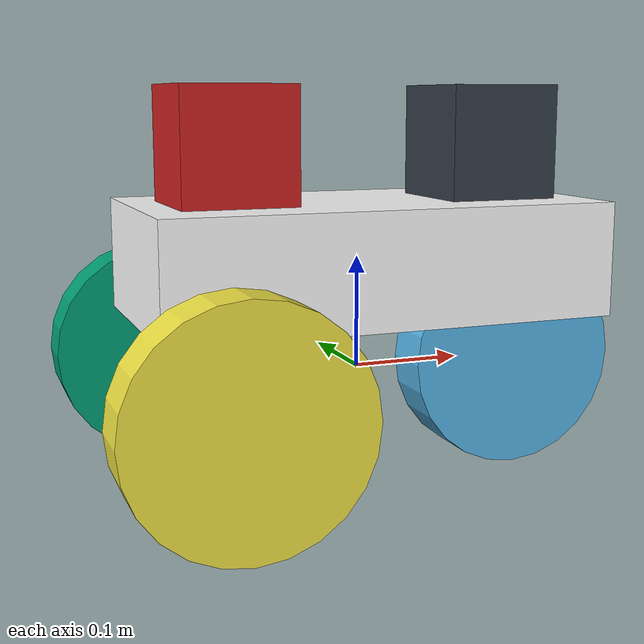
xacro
<?xml version="1.0"?>
<robot name="castor"
	xmlns:xacro="http://www.ros.org/wiki/xacro">

	<!-- Included files -->
	<xacro:include filename="$(find node_counting_alg)/urdf/components.gazebo"/>
	<xacro:include filename="$(find node_counting_alg)/urdf/materials.xacro" />

	<!-- Create robot's base_link -->
	<xacro:base_link name="base_link" size_x = "0.4" size_y = "0.2" size_z = "0.1" mass="5"/>

	<!-- Create wheels -->

	<xacro:wheel_link name="link_front_wheel" mass="0.2"/>
	<xacro:omniwheel_joint name="joint_front_wheel" child="link_front_wheel" origin_xyz="0.15 0 0"/>

	<xacro:wheel_link name="link_lrear_wheel" mass="0.2"/>
	<xacro:wheel_joint name="joint_lrear_wheel" child="link_lrear_wheel" origin_xyz="-0.15 0.15 0"/>

	<xacro:wheel_link name="link_rrear_wheel" mass="0.2"/>
	<xacro:wheel_joint name="joint_rrear_wheel" child="link_rrear_wheel" origin_xyz="-0.15 -0.15 0"/>

	<!-- Create camera -->
	<xacro:sensor_link name="camera_link" color = "red"/>
	<xacro:sensor_joint name="camera_joint" child="camera_link" origin_xyz="-0.12 0 0.2" />

	<!-- Create laser -->
	<xacro:sensor_link name="laser_link" color = "blue"/>
	<xacro:sensor_joint name="laser_joint" child="laser_link" origin_xyz="0.12 0 0.2" />

	<gazebo>
		<plugin filename="libgazebo_ros_diff_drive.so" name="differential_drive_controller">
			<alwaysOn>true</alwaysOn>
			<updateRate>100</updateRate>
			<leftJoint>joint_lrear_wheel</leftJoint>
			<rightJoint>joint_rrear_wheel</rightJoint>
			<wheelSeparation>0.4</wheelSeparation>
			<wheelDiameter>0.2</wheelDiameter>
			<torque>0.1</torque>
			<commandTopic>cmd_vel</commandTopic>
			<odometryTopic>odom</odometryTopic>
			<odometryFrame>odom</odometryFrame>
			<robotBaseFrame>base_link</robotBaseFrame>
			<rosDebugLevel>na</rosDebugLevel>
			<publishWheelTF>true</publishWheelTF>
			<publishWheelJointState>true</publishWheelJointState>
			<legacyMode>false</legacyMode>
			<wheelAcceleration>0.1</wheelAcceleration>
			<wheelTorque>5</wheelTorque>
			<odometrySource>world</odometrySource>
			<publishTf>1</publishTf>
		</plugin>
	</gazebo>

	<!-- Camera plugin -->
	<xacro:camera_plugin name="front_camera" ref_link = "camera_link"/>

	<!-- Laser plugin -->
	<xacro:laser_plugin name="front_laser" ref_link = "laser_link"/>

</robot>

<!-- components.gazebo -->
<robot xmlns:xacro="http://www.ros.org/wiki/xacro">

  <!--Materials-->
  <gazebo reference="base_link">
    <material>Gazebo/Orange</material>
  </gazebo>
  <gazebo reference="link_wheel_1">
    <material>Gazebo/Black</material>
  </gazebo>
  <gazebo reference="link_wheel_2">
    <material>Gazebo/Black</material>
  </gazebo>
  <gazebo reference="link_wheel_3">
    <material>Gazebo/Black</material>
  </gazebo>
  <gazebo reference="link_wheel_4">
    <material>Gazebo/Black</material>
  </gazebo>
  <gazebo reference="camera_link">
    <material>Gazebo/Red</material>
  </gazebo>
  <gazebo reference="laser_link">
    <material>Gazebo/Blue</material>
  </gazebo>

  <xacro:macro name="default_inertial" params="mass">
    <inertial>
      <mass value="${mass}" />
      <inertia ixx="1.0" ixy="0.0" ixz="0.0" iyy="1.0" iyz="0.0" izz="1.0" />
    </inertial>
  </xacro:macro>

  <!--Cylinder-->

  <xacro:macro name="cylinder_geometry" params="r h">
    <geometry>
      <cylinder length="${h}" radius="${r}"/>
    </geometry>
  </xacro:macro>

  <!--Base-->

  <xacro:macro name="base_link" params="name size_x size_y size_z mass">
    <link name="${name}">
      <xacro:default_inertial mass="${mass}"/>
      <visual>
        <geometry>
          <box size="${size_x} ${size_y} ${size_z}"/>
        </geometry>
        <origin rpy="0 0 0" xyz="0 0 ${size_z}"/>
        <material name="white">
          <color rgba="1 1 1 1"/>
        </material>
      </visual>
      <collision>
        <geometry>
          <box size="${size_x} ${size_y} ${size_z}"/>
        </geometry>
        <origin rpy="0 0 0" xyz="0 0 ${size_z}"/>
      </collision>
    </link>
  </xacro:macro>

  <xacro:macro name="castor_base_link" params="name size_x size_y size_z mass">
    <link name="${name}">
      <!-- All Base - Pose and Inertial -->
      <pose>0 0 0.1 0 0 0</pose>
      <inertial>
        <mass value="${mass}"/>
        <origin rpy="0 0 0" xyz="0 0 0.1"/>
        <inertia ixx="0.0395416666667" ixy="0" ixz="0" iyy="0.106208333333" iyz="0" izz="0.106208333333"/>
      </inertial>
      <!-- Chassis - Visual and cllision -->
      <visual>
        <geometry>
          <box size="${size_x} ${size_y} ${size_z}"/>
        </geometry>
        <origin rpy="0 0 0" xyz="0 0 ${size_z}"/>
        <material name="white">
          <color rgba="1 1 1 1"/>
        </material>
      </visual>
      <collision name="collision_chassis">
        <geometry>
          <box size="${size_x} ${size_y} ${size_z}"/>
        </geometry>
        <origin rpy="0 0 0" xyz="0 0 ${size_z}"/>
      </collision>
      <!-- Front Castor Wheel - Visual and cllision -->
      <visual name="castor_front_visual">
        <origin rpy=" 0 0 0" xyz="0.1 0 -0.02"/>
        <geometry>
          <sphere radius="0.08"/>
        </geometry>
        <material name="white">
          <color rgba="1 1 1 1"/>
        </material>
      </visual>
      <collision name="castor_front_collision">
        <origin rpy=" 0 0 0" xyz="0.1 0 -0.02"/>
        <geometry>
          <sphere radius="0.08"/>
        </geometry>
        <surface>
          <friction>
            <ode>
              <mu>0</mu>
              <mu2>0</mu2>
              <slip1>1.0</slip1>
              <slip2>1.0</slip2>
            </ode>
          </friction>
        </surface>
      </collision>
    </link>
  </xacro:macro>

  <!--Wheel-->

  <xacro:property name="PI" value="3.1415926535897931"/>
  <xacro:property name="halfPI" value="1.570796327"/>
  <xacro:property name="width_wheel" value="0.05" />
  <xacro:property name="radius_wheel" value="0.1" />

  <xacro:macro name="wheel_link" params="name mass">
    <link name="${name}">
      <xacro:default_inertial mass="${mass}"/>
      <collision name="link_right_wheel_collision">
        <origin rpy="0 1.5708 1.5708" xyz="0 0 0"/>
        <xacro:cylinder_geometry r = "${radius_wheel}" h = "${width_wheel}" />
      </collision>
      <visual name="${name}_visual">
        <origin rpy="0 1.5708 1.5708" xyz="0 0 0"/>
        <xacro:cylinder_geometry r = "${radius_wheel}" h = "${width_wheel}" />
      </visual>
    </link>
  </xacro:macro>

  <xacro:macro name="wheel_joint" params="name child origin_xyz">
    <joint name="${name}" type="continuous">
      <origin rpy="0 0 0" xyz="${origin_xyz}"/>
      <child link="${child}"/>
      <parent link="base_link"/>
      <axis rpy="0 0 0" xyz="0 1 0"/>
      <limit effort="10000" velocity="1000"/>
      <joint_properties damping="1.0" friction="1.0"/>
    </joint>
  </xacro:macro>

  <xacro:macro name="omniwheel_joint" params="name child origin_xyz">
    <joint name="${name}" type="continuous">
      <origin rpy="0 0 0" xyz="${origin_xyz}"/>
      <child link="${child}"/>
      <parent link="base_link"/>
      <axis xyz="0 1 0" rpy="0 0 0" />
      <limit effort="1000" velocity="1000"/>
      <joint_properties damping="0.0" friction="0.0"/>
    </joint>
  </xacro:macro>

  <!--Sensor Link -->

  <xacro:macro name="sensor_link" params="name color">
    <link name="${name}">
      <visual>
        <geometry>
          <box size="0.1 0.1 0.1"/>
        </geometry>
        <origin rpy="0 0 0" xyz="0 0 0"/>
        <material name="${color}">
        </material>
      </visual>
      <collision>
        <geometry>
          <box size="0.1 0.1 0.1 "/>
        </geometry>
        <origin rpy="0 0 0" xyz="0 0 0"/>
      </collision>
      <xacro:default_inertial mass="0.01"/>
    </link>
  </xacro:macro>

  <xacro:macro name="sensor_joint" params="name child origin_xyz">
    <joint name="${name}" type="fixed">
      <origin rpy="0 0 0" xyz="${origin_xyz}"/>
      <child link="${child}"/>
      <parent link="base_link"/>
    </joint>
  </xacro:macro>

  <!-- Camera plugin -->

  <xacro:macro name="camera_plugin" params="name ref_link">
    <gazebo reference="${ref_link}">
      <sensor type="camera" name="${name}">
        <update_rate>30.0</update_rate>
        <camera name="head">
          <horizontal_fov>1.3962634</horizontal_fov>
          <image>
            <width>800</width>
            <height>800</height>
            <format>R8G8B8</format>
          </image>
          <clip>
            <near>0.02</near>
            <far>300</far>
          </clip>
          <noise>
            <type>gaussian</type>
            <!-- Noise is sampled independently per pixel on each frame.
             That pixel's noise value is added to each of its color
             channels, which at that point lie in the range [0,1]. -->
            <mean>0.0</mean>
            <stddev>0.007</stddev>
          </noise>
        </camera>
        <plugin name="camera_controller" filename="libgazebo_ros_camera.so">
          <alwaysOn>true</alwaysOn>
          <updateRate>0.0</updateRate>
          <cameraName>robot/${name}</cameraName>
          <imageTopicName>image_raw</imageTopicName>
          <cameraInfoTopicName>camera_info</cameraInfoTopicName>
          <frameName>${name}</frameName>
          <hackBaseline>0.07</hackBaseline>
          <distortionK1>0.0</distortionK1>
          <distortionK2>0.0</distortionK2>
          <distortionK3>0.0</distortionK3>
          <distortionT1>0.0</distortionT1>
          <distortionT2>0.0</distortionT2>
        </plugin>
      </sensor>
    </gazebo>
  </xacro:macro>

  <!--Laser plugin-->

  <xacro:macro name="laser_plugin" params="name ref_link">
    <gazebo reference="${ref_link}">
      <sensor type="ray" name="${name}">
        <pose>0 0 0 0 0 0</pose>
        <visualize>true</visualize>
        <update_rate>20</update_rate>
        <ray>
          <scan>
            <horizontal>
              <samples>720</samples>
              <resolution>1</resolution>
              <min_angle>-1.570796</min_angle>
              <max_angle>1.570796</max_angle>
            </horizontal>
          </scan>
          <range>
            <min>0.10</min>
            <max>10.0</max>
            <resolution>0.01</resolution>
          </range>
          <noise>
            <type>gaussian</type>
            <mean>0.0</mean>
            <stddev>0.01</stddev>
          </noise>
        </ray>
        <plugin name="${name}_controller" filename="libgazebo_ros_laser.so">
          <topicName>${name}/scan</topicName>
          <frameName>${name}</frameName>
        </plugin>
      </sensor>
    </gazebo>
  </xacro:macro>

  <!-- 360Laser plugin-->

  <xacro:macro name="full_laser_plugin" params="name ref_link">
    <gazebo reference="${ref_link}">
      <sensor type="ray" name="${name}">
        <pose>0 0 0 0 0 0</pose>
        <visualize>true</visualize>
        <update_rate>20</update_rate>
        <ray>
          <scan>
            <horizontal>
              <samples>720</samples>
              <resolution>1</resolution>
              <min_angle>-3.15</min_angle>
              <max_angle>3.15</max_angle>
            </horizontal>
          </scan>
          <range>
            <min>0.10</min>
            <max>10.0</max>
            <resolution>0.01</resolution>
          </range>
          <noise>
            <type>gaussian</type>
            <mean>0.0</mean>
            <stddev>0.01</stddev>
          </noise>
        </ray>
        <plugin name="${name}_controller" filename="libgazebo_ros_laser.so">
          <topicName>${name}/scan</topicName>
          <frameName>${name}</frameName>
        </plugin>
      </sensor>
    </gazebo>
  </xacro:macro>

</robot>

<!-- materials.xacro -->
<robot>

  <material name="black">
    <color rgba="0.0 0.0 0.0 1.0"/>
  </material>
  <material name="blue">
    <color rgba="0.203125 0.23828125 0.28515625 1.0"/>
  </material>
  <material name="green">
    <color rgba="0.0 0.8 0.0 1.0"/>
  </material>
  <material name="grey">
    <color rgba="0.2 0.2 0.2 1.0"/>
  </material>
  <material name="orange">
    <color rgba="1.0 0.423529411765 0.0392156862745 1.0"/>
  </material>
  <material name="brown">
    <color rgba="0.870588235294 0.811764705882 0.764705882353 1.0"/>
  </material>
  <material name="red">
    <color rgba="0.80078125 0.12890625 0.1328125 1.0"/>
  </material>
  <material name="white">
    <color rgba="1.0 1.0 1.0 1.0"/>
  </material>

</robot>
